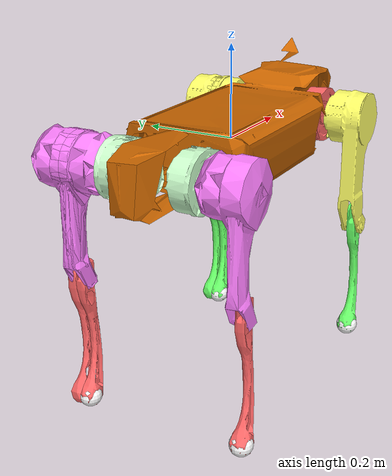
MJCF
<mujoco model="galileo_mini15">
  <compiler angle="radian" meshdir="../meshes/"/>

  <asset>
    <mesh name="trunk" file="trunk.STL"/>
    <mesh name="FL_abd_link" file="FL_abd_link.STL" scale="1 -1 1"/>
    <mesh name="FL_hip_link" file="FL_hip_link.STL" scale="1 -1 1"/>
    <mesh name="FL_knee_link" file="FL_knee_link.STL" scale="1 -1 1"/>
    <mesh name="RL_abd_link" file="RL_abd_link.STL" scale="1 -1 1"/>
    <mesh name="RL_hip_link" file="RL_hip_link.STL" scale="1 -1 1"/>
    <mesh name="RL_knee_link" file="RL_knee_link.STL" scale="1 -1 1"/>
    <mesh name="FL_abd_link1" file="FL_abd_link.STL"/>
    <mesh name="FL_hip_link1" file="FL_hip_link.STL"/>
    <mesh name="FL_knee_link1" file="FL_knee_link.STL"/>
    <mesh name="RL_abd_link1" file="RL_abd_link.STL"/>
    <mesh name="RL_hip_link1" file="RL_hip_link.STL"/>
    <mesh name="RL_knee_link1" file="RL_knee_link.STL"/>
  </asset>

  <worldbody>
    <body name="base_link">
      <inertial pos="0.01435 0.0040863 0.0010607" quat="-0.000902013 0.728669 -0.0025851 0.68486" mass="16.057" diaginertia="0.447226 0.407374 0.0809415"/>
      <joint name="floating_base_joint" type="free" limited="false" actuatorfrclimited="false"/>
      <geom type="mesh" contype="0" conaffinity="0" group="1" density="0" rgba="0.8 0.4 0 1" mesh="trunk"/>
      <geom type="mesh" rgba="0.8 0.4 0 1" mesh="trunk"/>
      <body name="FR_abd_link" pos="0.2065 -0.065 0">
        <inertial pos="0.074261 -0.010662 0.00797" quat="0.529655 0.515531 0.47108 0.481433" mass="1.748" diaginertia="0.0014516 0.00107337 0.000660418"/>
        <joint name="FR_abd_joint" pos="0 0 0" axis="1 0 0" range="-0.80285 0.80285" actuatorfrcrange="-100 100"/>
        <geom type="mesh" contype="0" conaffinity="0" group="1" density="0" rgba="1 0.4 0.4 1" mesh="FL_abd_link"/>
        <geom type="mesh" rgba="1 0.4 0.4 1" mesh="FL_abd_link"/>
        <body name="FR_hip_link" pos="0.08 -0.119 0">
          <inertial pos="-0.0014 0.0344 -0.0174" quat="0.985102 -0.0970444 0.0193668 -0.140648" mass="2.22606" diaginertia="0.00945738 0.00933332 0.00202047"/>
          <joint name="FR_hip_joint" pos="0 0 0" axis="0 1 0" range="-1.0472 4.1888" actuatorfrcrange="-100 100"/>
          <geom type="mesh" contype="0" conaffinity="0" group="1" density="0" rgba="1 1 0.4 1" mesh="FL_hip_link"/>
          <geom type="mesh" rgba="1 1 0.4 1" mesh="FL_hip_link"/>
          <body name="FR_knee_link" pos="0 -0.01 -0.26">
            <inertial pos="0.00432668 0.0101814 -0.133929" quat="0.728618 -0.00369805 -0.00253684 0.684905" mass="0.336305" diaginertia="0.00482398 0.00477364 9.17969e-05"/>
            <joint name="FR_knee_joint" pos="0 0 0" axis="0 1 0" range="-2.6965 -0.9163" actuatorfrcrange="-150 150"/>
            <geom type="mesh" contype="0" conaffinity="0" group="1" density="0" rgba="0.4 1 0.4 1" mesh="FL_knee_link"/>
            <geom type="mesh" rgba="0.4 1 0.4 1" mesh="FL_knee_link"/>
            <geom size="0.025" pos="-0.007061 0.0105 -0.26749" contype="0" conaffinity="0" group="1" density="0" rgba="1 1 1 1"/>
            <geom size="0.025" pos="-0.007061 0.0105 -0.26749" rgba="1 1 1 1"/>
          </body>
        </body>
      </body>
      <body name="HR_abd_link" pos="-0.2065 -0.065 0">
        <inertial pos="0.074261 -0.010662 0.00797" quat="0.47108 0.481433 0.529655 0.515531" mass="1.748" diaginertia="0.0014516 0.00107337 0.000660418"/>
        <joint name="HR_abd_joint" pos="0 0 0" axis="1 0 0" range="-0.80285 0.80285" actuatorfrcrange="-100 100"/>
        <geom type="mesh" contype="0" conaffinity="0" group="1" density="0" rgba="0.8 1 0.8 1" mesh="RL_abd_link"/>
        <geom type="mesh" rgba="0.8 1 0.8 1" mesh="RL_abd_link"/>
        <body name="HR_hip_link" pos="-0.08 -0.119 0">
          <inertial pos="-0.0014 0.0344 -0.0174" quat="0.985102 -0.0970444 0.0193668 -0.140648" mass="2.22606" diaginertia="0.00945738 0.00933332 0.00202047"/>
          <joint name="HR_hip_joint" pos="0 0 0" axis="0 1 0" range="-1.0472 4.1888" actuatorfrcrange="-100 100"/>
          <geom type="mesh" contype="0" conaffinity="0" group="1" density="0" rgba="1 0.5 1 1" mesh="RL_hip_link"/>
          <geom type="mesh" rgba="1 0.5 1 1" mesh="RL_hip_link"/>
          <body name="HR_knee_link" pos="0 -0.01 -0.26">
            <inertial pos="0.00432668 0.0101814 -0.133929" quat="0.728618 -0.00369805 -0.00253684 0.684905" mass="0.336305" diaginertia="0.00482398 0.00477364 9.17969e-05"/>
            <joint name="HR_knee_joint" pos="0 0 0" axis="0 1 0" range="-2.6965 -0.9163" actuatorfrcrange="-150 150"/>
            <geom type="mesh" contype="0" conaffinity="0" group="1" density="0" rgba="1 0.4 0.4 1" mesh="RL_knee_link"/>
            <geom type="mesh" rgba="1 0.4 0.4 1" mesh="RL_knee_link"/>
            <geom size="0.025" pos="-0.007061 0.0105 -0.26749" contype="0" conaffinity="0" group="1" density="0" rgba="1 1 1 1"/>
            <geom size="0.025" pos="-0.007061 0.0105 -0.26749" rgba="1 1 1 1"/>
          </body>
        </body>
      </body>
      <body name="FL_abd_link" pos="0.2065 0.065 0">
        <inertial pos="0.074261 0.010662 0.00797" quat="0.481433 0.47108 0.515531 0.529655" mass="1.748" diaginertia="0.0014516 0.00107337 0.000660418"/>
        <joint name="FL_abd_joint" pos="0 0 0" axis="1 0 0" range="-0.80285 0.80285" actuatorfrcrange="-100 100"/>
        <geom type="mesh" contype="0" conaffinity="0" group="1" density="0" rgba="1 0.4 0.4 1" mesh="FL_abd_link1"/>
        <geom type="mesh" rgba="1 0.4 0.4 1" mesh="FL_abd_link"/>
        <body name="FL_hip_link" pos="0.08 0.119 0">
          <inertial pos="-0.0014 -0.0344 -0.0174" quat="0.985102 0.0970444 0.0193668 0.140648" mass="2.22606" diaginertia="0.00945738 0.00933332 0.00202047"/>
          <joint name="FL_hip_joint" pos="0 0 0" axis="0 1 0" range="-1.0472 4.1888" actuatorfrcrange="-100 100"/>
          <geom type="mesh" contype="0" conaffinity="0" group="1" density="0" rgba="1 1 0.4 1" mesh="FL_hip_link1"/>
          <geom type="mesh" rgba="1 1 0.4 1" mesh="FL_hip_link"/>
          <body name="FL_knee_link" pos="0 0.01 -0.26">
            <inertial pos="0.00432668 -0.0101814 -0.133929" quat="0.684905 -0.00253684 -0.00369805 0.728618" mass="0.336305" diaginertia="0.00482398 0.00477364 9.17969e-05"/>
            <joint name="FL_knee_joint" pos="0 0 0" axis="0 1 0" range="-2.6965 -0.9163" actuatorfrcrange="-150 150"/>
            <geom type="mesh" contype="0" conaffinity="0" group="1" density="0" rgba="0.4 1 0.4 1" mesh="FL_knee_link1"/>
            <geom type="mesh" rgba="0.4 1 0.4 1" mesh="FL_knee_link"/>
            <geom size="0.025" pos="-0.007061 -0.0105 -0.26749" contype="0" conaffinity="0" group="1" density="0" rgba="1 1 1 1"/>
            <geom size="0.025" pos="-0.007061 -0.0105 -0.26749" rgba="1 1 1 1"/>
          </body>
        </body>
      </body>
      <body name="HL_abd_link" pos="-0.2065 0.065 0">
        <inertial pos="0.074261 0.010662 0.00797" quat="0.515531 0.529655 0.481433 0.47108" mass="1.748" diaginertia="0.0014516 0.00107337 0.000660418"/>
        <joint name="HL_abd_joint" pos="0 0 0" axis="1 0 0" range="-0.80285 0.80285" actuatorfrcrange="-100 100"/>
        <geom type="mesh" contype="0" conaffinity="0" group="1" density="0" rgba="0.8 1 0.8 1" mesh="RL_abd_link1"/>
        <geom type="mesh" rgba="0.8 1 0.8 1" mesh="RL_abd_link"/>
        <body name="HL_hip_link" pos="-0.08 0.119 0">
          <inertial pos="-0.0014 -0.0344 -0.0174" quat="0.985102 0.0970444 0.0193668 0.140648" mass="2.22606" diaginertia="0.00945738 0.00933332 0.00202047"/>
          <joint name="HL_hip_joint" pos="0 0 0" axis="0 1 0" range="-1.0472 4.1888" actuatorfrcrange="-100 100"/>
          <geom type="mesh" contype="0" conaffinity="0" group="1" density="0" rgba="1 0.5 1 1" mesh="RL_hip_link1"/>
          <geom type="mesh" rgba="1 0.5 1 1" mesh="RL_hip_link"/>
          <body name="HL_knee_link" pos="0 0.01 -0.26">
            <inertial pos="0.00432668 -0.0101814 -0.133929" quat="0.684905 -0.00253684 -0.00369805 0.728618" mass="0.336305" diaginertia="0.00482398 0.00477364 9.17969e-05"/>
            <joint name="HL_knee_joint" pos="0 0 0" axis="0 1 0" range="-2.6965 -0.9163" actuatorfrcrange="-150 150"/>
            <geom type="mesh" contype="0" conaffinity="0" group="1" density="0" rgba="1 0.4 0.4 1" mesh="RL_knee_link1"/>
            <geom type="mesh" rgba="1 0.4 0.4 1" mesh="RL_knee_link"/>
            <geom size="0.025" pos="-0.007061 -0.0105 -0.26749" contype="0" conaffinity="0" group="1" density="0" rgba="1 1 1 1"/>
            <geom size="0.025" pos="-0.007061 -0.0105 -0.26749" rgba="1 1 1 1"/>
          </body>
        </body>
      </body>
    </body>
  </worldbody>
</mujoco>
